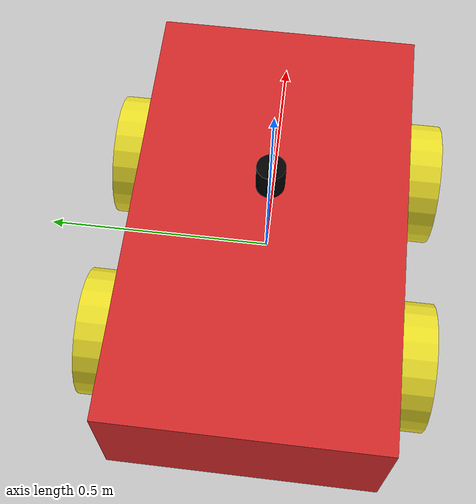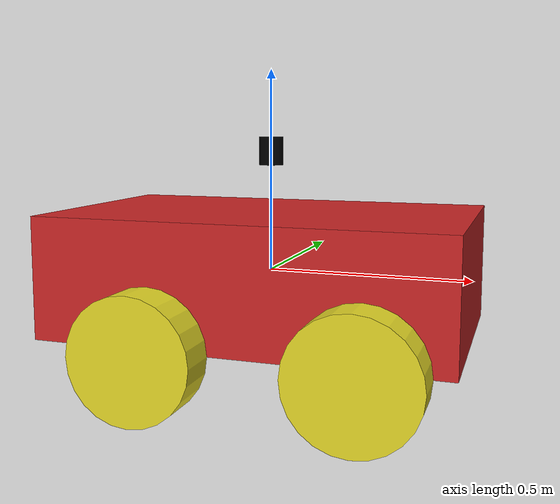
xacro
<?xml version="1.0"?>
<robot name="mydifferential_drive_robot" xmlns:xacro="http://www.ros.org/wiki/xacro">
<xacro:arg name="robot_namespace" default="robot_name"/>
<material name="black">
        <color rgba="0 0 0 1"/>
    </material>
<xacro:property name="body_link_x_dim" value="1"/>
<xacro:property name="body_link_y_dim" value="0.6"/>
<xacro:property name="body_link_z_dim" value="0.3"/>

<xacro:property name="wheel_link_radius" value="0.15"/>
<xacro:property name="wheel_link_length" value="0.1"/>
<xacro:property name="wheel_link_z_location" value="-0.1"/>

<xacro:property name="body_density" value="3500.0"/>
<xacro:property name="wheel_density" value="3500.0"/>

<xacro:property name="pi_const" value="3.14159265"/>

<xacro:property name="body_mass" value="${body_density*body_link_x_dim*body_link_y_dim*body_link_z_dim}"/>
<xacro:property name="wheel_mass" value="${wheel_density*pi_const*wheel_link_radius*wheel_link_radius*wheel_link_length}"/>

<xacro:property name="Iz_wheel" value="${0.5*wheel_mass*wheel_link_radius*wheel_link_radius}" />
<xacro:property name="I_wheel" value="${(1.0/12.0)*wheel_mass*(3.0*wheel_link_radius*wheel_link_radius+wheel_link_length*wheel_link_length)}" />

<xacro:macro name="inertia_wheel">
    <inertial>
    <origin rpy="0 0 0" xyz="0 0 0"/>
    <mass value="${wheel_mass}"/>
    <inertia ixx="${I_wheel}" ixy="0.0" ixz="0.0" iyy="${I_wheel}" iyz="0.0" izz="${Iz_wheel}" />
    </inertial>
</xacro:macro>

<xacro:include filename="$(find mobile_robot2)/model/robot2.gazebo" />

<link name="base_link" />
<joint name="base_link_joint" type="fixed">
    <parent link="base_link"/>
    <child link="body_link"/>
</joint>

<link name="body_link">
    <visual>
        <geometry>
            <box size="${body_link_x_dim} ${body_link_y_dim} ${body_link_z_dim}" />
        </geometry>
        <origin rpy="0 0 0" xyz="0 0 0"/>
    </visual>
    <collision>
        <geometry>
            <box size="1.0 0.6 0.3" />
        </geometry>
        <origin rpy="0 0 0" xyz="0 0 0"/>
    </collision>
    <inertial>
        <origin rpy="0 0 0" xyz="0 0 0"/>
        <mass value="${body_mass}"/>
        <inertia ixx="${(1.0/12.0)*body_mass*(body_link_y_dim*body_link_y_dim+body_link_z_dim*body_link_z_dim)}"
                ixy="0.0" ixz="0.0" iyz="0.0"
                iyy="${(1.0/12.0)*body_mass*(body_link_x_dim*body_link_x_dim+body_link_z_dim*body_link_z_dim)}"
                izz="${(1.0/12.0)*body_mass*(body_link_y_dim*body_link_y_dim+body_link_x_dim*body_link_x_dim)}"/>
    </inertial>
</link>

<joint name="wheel1_joint" type="continuous" >
    <parent link="body_link"/>
    <child link="wheel1_link"/>
    <origin xyz="-0.2 -0.35 -0.15" rpy="0 0 0" />
    <axis xyz="0 1 0"/>
    <limit effort="1000" velocity="1000"/>
    <dynamics damping="5.0" friction="2.0"/>
</joint>

<link name="wheel1_link">
    <visual>
        <origin rpy="1.570795 0 0" xyz="0 0 0"/>
        <geometry>
            <cylinder length="0.1" radius="0.15"/>
        </geometry>
    </visual>
    <collision>
        <origin rpy="1.570795 0 0" xyz="0 0 0"/>
        <geometry>
            <cylinder length="${wheel_link_length}" radius="${wheel_link_radius}"/>
        </geometry>
    </collision>
<xacro:inertia_wheel />
</link>

<joint name="wheel2_joint" type="continuous" >
    <parent link="body_link"/>
    <child link="wheel2_link"/>
    <origin xyz="-0.2 0.35 -0.15" rpy="0 0 0" />
    <axis xyz="0 1 0"/>
    <limit effort="1000" velocity="1000"/>
    <dynamics damping="1.0" friction="2.0"/>
</joint>

<link name="wheel2_link">
    <visual>
        <origin rpy="1.570795 0 0" xyz="0 0 0"/>
        <geometry>
            <cylinder length="${wheel_link_length}" radius="${wheel_link_radius}"/>
        </geometry>
    </visual>
    <collision>
        <origin rpy="1.570795 0 0" xyz="0 0 0"/>
        <geometry>
            <cylinder length="${wheel_link_length}" radius="${wheel_link_radius}"/>
        </geometry>
    </collision>
<xacro:inertia_wheel />
</link>

<joint name="wheel3_joint" type="continuous" >
    <parent link="body_link"/>
    <child link="wheel3_link"/>
    <origin xyz="0.3 -0.35 -0.15" rpy="0 0 0" />
    <axis xyz="0 1 0"/>
    <limit effort="1000" velocity="1000"/>
    <dynamics damping="1.0" friction="2.0"/>
</joint>

<link name="wheel3_link">
    <visual>
        <origin rpy="1.570795 0 0" xyz="0 0 0"/>
        <geometry>
            <cylinder length="${wheel_link_length}" radius="${wheel_link_radius}"/>
        </geometry>
    </visual>
    <collision>
        <origin rpy="1.570795 0 0" xyz="0 0 0"/>
        <geometry>
            <cylinder length="${wheel_link_length}" radius="${wheel_link_radius}"/>
        </geometry>
    </collision>
<xacro:inertia_wheel />
</link>

<joint name="wheel4_joint" type="continuous" >
    <parent link="body_link"/>
    <child link="wheel4_link"/>
    <origin xyz="0.3 0.35 -0.15" rpy="0 0 0" />
    <axis xyz="0 1 0"/>
    <limit effort="1000" velocity="1000"/>
    <dynamics damping="1.0" friction="2.0"/>
</joint>

<link name="wheel4_link">
    <visual>
        <origin rpy="1.570795 0 0" xyz="0 0 0"/>
        <geometry>
            <cylinder length="${wheel_link_length}" radius="${wheel_link_radius}"/>
        </geometry>
    </visual>
    <collision>
        <origin rpy="1.570795 0 0" xyz="0 0 0"/>
        <geometry>
            <cylinder length="${wheel_link_length}" radius="${wheel_link_radius}"/>
        </geometry>
    </collision>
<xacro:inertia_wheel />
</link>

<link name="velodyne">
        <visual>
            <origin xyz="0 0 0" rpy="0 0 0"/>
            <geometry>
                <cylinder radius="0.03" length="0.07"/>
            </geometry>
            <material name="black"/>
        </visual>
        <collision>
            <origin xyz="0 0 0" rpy="0 0 0"/>
            <geometry>
                <cylinder radius="0.03" length="0.07"/>
            </geometry>
        </collision>
        <inertial>
            <mass value="0.1"/>
            <inertia ixx="0.000016" ixy="0" ixz="0" iyy="0.000016" iyz="0" izz="0.000016"/>
        </inertial>
    </link>

    <joint name="velodyne_joint" type="fixed">
        <parent link="body_link"/>
        <child link="velodyne"/>
        <origin xyz="0 0 0.3" rpy="0 0 0"/>
    </joint>
</robot>
